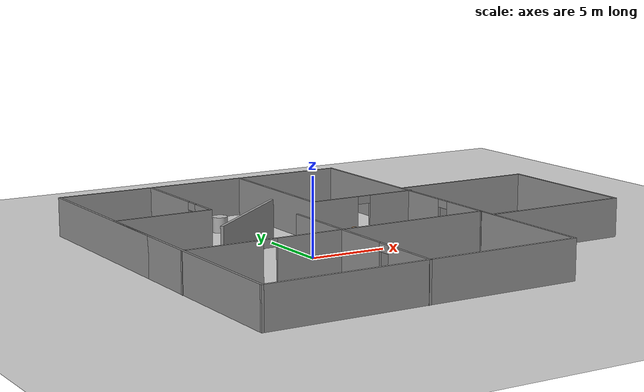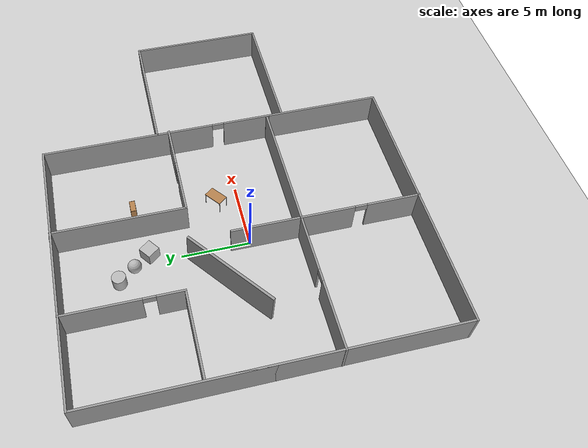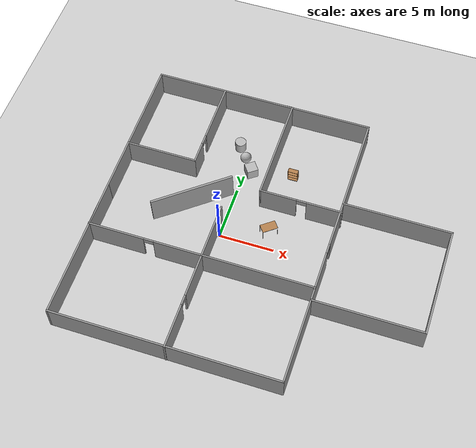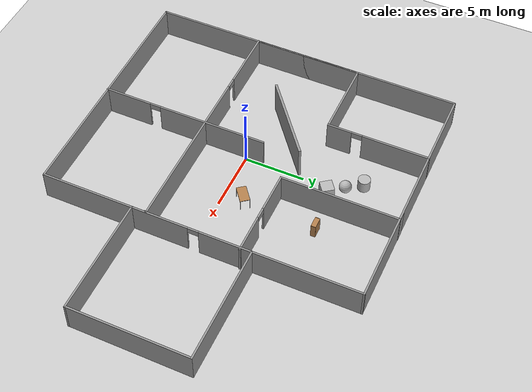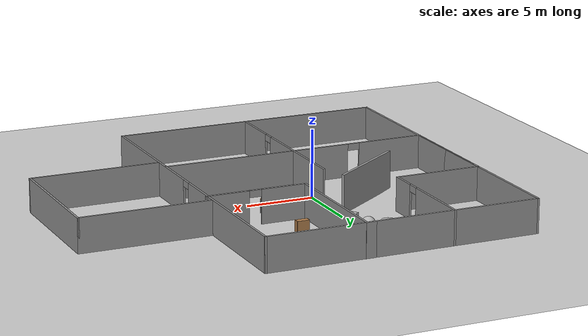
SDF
<sdf version="1.6">
 <world name="default">
  <model name="ground_plane">
   <static>1</static>
   <link name="link">
    <collision name="collision">
     <geometry><plane><normal>0 0 1</normal><size>100 100</size></plane></geometry>
     <surface><friction><ode><mu>100</mu><mu2>50</mu2></ode></friction></surface>
    </collision>
    <visual name="visual">
     <cast_shadows>0</cast_shadows>
     <geometry><plane><normal>0 0 1</normal><size>100 100</size></plane></geometry>
     <material>
      <script><uri>file://media/materials/scripts/gazebo.material</uri><name>Gazebo/Grey</name></script>
     </material>
    </visual>
   </link>
  </model>
  <model name="bookshelf">
   <static>1</static>
   <link name="link">
    <inertial><mass>1</mass></inertial>
    <collision name="back">
     <pose>0 0.005 0.6 0 -0 0</pose>
     <geometry><box><size>0.9 0.01 1.2</size></box></geometry>
    </collision>
    <visual name="visual1">
     <pose>0 0.005 0.6 0 -0 0</pose>
     <geometry><box><size>0.9 0.01 1.2</size></box></geometry>
     <material>
      <script><uri>file://media/materials/scripts/gazebo.material</uri><name>Gazebo/Wood</name></script>
     </material>
    </visual>
    <collision name="left_side">
     <pose>0.45 -0.195 0.6 0 -0 0</pose>
     <geometry><box><size>0.02 0.4 1.2</size></box></geometry>
    </collision>
    <visual name="visual2">
     <pose>0.45 -0.195 0.6 0 -0 0</pose>
     <geometry><box><size>0.02 0.4 1.2</size></box></geometry>
     <material>
      <script><uri>file://media/materials/scripts/gazebo.material</uri><name>Gazebo/Wood</name></script>
     </material>
    </visual>
    <collision name="right_side">
     <pose>-0.45 -0.195 0.6 0 -0 0</pose>
     <geometry><box><size>0.02 0.4 1.2</size></box></geometry>
    </collision>
    <visual name="visual3">
     <pose>-0.45 -0.195 0.6 0 -0 0</pose>
     <geometry><box><size>0.02 0.4 1.2</size></box></geometry>
     <material>
      <script><uri>file://media/materials/scripts/gazebo.material</uri><name>Gazebo/Wood</name></script>
     </material>
    </visual>
    <collision name="bottom">
     <pose>0 -0.195 0.03 0 -0 0</pose>
     <geometry><box><size>0.88 0.4 0.06</size></box></geometry>
    </collision>
    <visual name="visual4">
     <pose>0 -0.195 0.03 0 -0 0</pose>
     <geometry><box><size>0.88 0.4 0.06</size></box></geometry>
     <material>
      <script><uri>file://media/materials/scripts/gazebo.material</uri><name>Gazebo/Wood</name></script>
     </material>
    </visual>
    <collision name="top">
     <pose>0 -0.195 1.19 0 -0 0</pose>
     <geometry><box><size>0.88 0.4 0.02</size></box></geometry>
    </collision>
    <visual name="visual5">
     <pose>0 -0.195 1.19 0 -0 0</pose>
     <geometry><box><size>0.88 0.4 0.02</size></box></geometry>
     <material>
      <script><uri>file://media/materials/scripts/gazebo.material</uri><name>Gazebo/Wood</name></script>
     </material>
    </visual>
    <collision name="low_shelf">
     <pose>0 -0.195 0.43 0 -0 0</pose>
     <geometry><box><size>0.88 0.4 0.02</size></box></geometry>
    </collision>
    <visual name="visual6">
     <pose>0 -0.195 0.43 0 -0 0</pose>
     <geometry><box><size>0.88 0.4 0.02</size></box></geometry>
     <material>
      <script><uri>file://media/materials/scripts/gazebo.material</uri><name>Gazebo/Wood</name></script>
     </material>
    </visual>
    <collision name="high_shelf">
     <pose>0 -0.195 0.8 0 -0 0</pose>
     <geometry><box><size>0.88 0.4 0.02</size></box></geometry>
    </collision>
    <visual name="visual7">
     <pose>0 -0.195 0.8 0 -0 0</pose>
     <geometry><box><size>0.88 0.4 0.02</size></box></geometry>
     <material>
      <script><uri>file://media/materials/scripts/gazebo.material</uri><name>Gazebo/Wood</name></script>
     </material>
    </visual>
   </link>
   <pose>4.37362 8.00409 0 0 -0 0</pose>
  </model>
  <model name="textured_shapes">
   <pose>-0.307519 8.3938 0.5 0 -0 0.64384</pose>
   <link name="box">
    <pose>0 -1.5 0 0 -0 0</pose>
    <collision name="collision"><geometry><box><size>1 1 1</size></box></geometry></collision>
    <visual name="visual">
     <geometry><box><size>1 1 1</size></box></geometry>
     <material>
      <script>
       <uri>model://textured_shapes/materials/scripts</uri>
       <uri>model://textured_shapes/materials/textures</uri>
       <name>TexturedShape/Squares</name>
      </script>
     </material>
    </visual>
    <inertial>
     <inertia><ixx>1</ixx><ixy>0</ixy><ixz>0</ixz><iyy>1</iyy><iyz>0</iyz><izz>1</izz></inertia>
     <mass>1</mass>
    </inertial>
   </link>
   <link name="sphere">
    <collision name="collision"><geometry><sphere><radius>0.5</radius></sphere></geometry></collision>
    <visual name="visual">
     <geometry><sphere><radius>0.5</radius></sphere></geometry>
     <material>
      <script>
       <uri>model://textured_shapes/materials/scripts</uri>
       <uri>model://textured_shapes/materials/textures</uri>
       <name>TexturedShape/Squares</name>
      </script>
     </material>
    </visual>
    <inertial>
     <inertia><ixx>1</ixx><ixy>0</ixy><ixz>0</ixz><iyy>1</iyy><iyz>0</iyz><izz>1</izz></inertia>
     <mass>1</mass>
    </inertial>
   </link>
   <link name="cylinder">
    <pose>0 1.5 0 0 -0 0</pose>
    <collision name="collision">
     <geometry><cylinder><radius>0.5</radius><length>1</length></cylinder></geometry>
    </collision>
    <visual name="visual">
     <geometry><cylinder><radius>0.5</radius><length>1</length></cylinder></geometry>
     <material>
      <script>
       <uri>model://textured_shapes/materials/scripts</uri>
       <uri>model://textured_shapes/materials/textures</uri>
       <name>TexturedShape/Squares</name>
      </script>
     </material>
    </visual>
    <inertial>
     <inertia><ixx>1</ixx><ixy>0</ixy><ixz>0</ixz><iyy>1</iyy><iyz>0</iyz><izz>1</izz></inertia>
     <mass>1</mass>
    </inertial>
   </link>
  </model>
  <model name="grey_wall">
   <static>1</static>
   <link name="link">
    <pose>0 0 1.4 0 -0 0</pose>
    <collision name="collision"><geometry><box><size>7.5 0.2 2.8</size></box></geometry></collision>
    <visual name="visual">
     <cast_shadows>0</cast_shadows>
     <geometry><box><size>7.5 0.2 2.8</size></box></geometry>
     <material>
      <script>
       <uri>model://grey_wall/materials/scripts</uri>
       <uri>model://grey_wall/materials/textures</uri>
       <name>vrc/grey_wall</name>
      </script>
     </material>
    </visual>
   </link>
   <pose>-3.18514 2.23987 4e-06 0.01417 -0.022146 0.663578</pose>
  </model>
  <model name="table_2">
   <static>0</static>
   <link name="link">
    <collision name="surface">
     <pose>0 0 1 0 -0 0</pose>
     <geometry><box><size>1.5 0.8 0.03</size></box></geometry>
     <surface><friction><ode><mu>0.6</mu><mu2>0.6</mu2></ode></friction></surface>
    </collision>
    <visual name="visual1">
     <pose>0 0 1 0 -0 0</pose>
     <geometry><box><size>1.4 0.8 0.04</size></box></geometry>
     <material>
      <script><uri>file://media/materials/scripts/gazebo.material</uri><name>Gazebo/Wood</name></script>
     </material>
    </visual>
    <collision name="front_left_leg">
     <pose>0.68 0.38 0.5 0 -0 0</pose>
     <geometry><cylinder><radius>0.02</radius><length>1</length></cylinder></geometry>
    </collision>
    <visual name="front_left_leg">
     <pose>0.68 0.38 0.5 0 -0 0</pose>
     <geometry><cylinder><radius>0.02</radius><length>1</length></cylinder></geometry>
     <material>
      <script><uri>file://media/materials/scripts/gazebo.material</uri><name>Gazebo/Grey</name></script>
     </material>
    </visual>
    <collision name="front_right_leg">
     <pose>0.68 -0.38 0.5 0 -0 0</pose>
     <geometry><cylinder><radius>0.02</radius><length>1</length></cylinder></geometry>
    </collision>
    <visual name="front_right_leg">
     <pose>0.68 -0.38 0.5 0 -0 0</pose>
     <geometry><cylinder><radius>0.02</radius><length>1</length></cylinder></geometry>
     <material>
      <script><uri>file://media/materials/scripts/gazebo.material</uri><name>Gazebo/Grey</name></script>
     </material>
    </visual>
    <collision name="back_right_leg">
     <pose>-0.68 -0.38 0.5 0 -0 0</pose>
     <geometry><cylinder><radius>0.02</radius><length>1</length></cylinder></geometry>
    </collision>
    <visual name="back_right_leg">
     <pose>-0.68 -0.38 0.5 0 -0 0</pose>
     <geometry><cylinder><radius>0.02</radius><length>1</length></cylinder></geometry>
     <material>
      <script><uri>file://media/materials/scripts/gazebo.material</uri><name>Gazebo/Grey</name></script>
     </material>
    </visual>
    <collision name="back_left_leg">
     <pose>-0.68 0.38 0.5 0 -0 0</pose>
     <geometry><cylinder><radius>0.02</radius><length>1</length></cylinder></geometry>
    </collision>
    <visual name="back_left_leg">
     <pose>-0.68 0.38 0.5 0 -0 0</pose>
     <geometry><cylinder><radius>0.02</radius><length>1</length></cylinder></geometry>
     <material>
      <script><uri>file://media/materials/scripts/gazebo.material</uri><name>Gazebo/Grey</name></script>
     </material>
    </visual>
    <inertial>
     <inertia><ixx>1</ixx><ixy>0</ixy><ixz>0</ixz><iyy>1</iyy><iyz>0</iyz><izz>1</izz></inertia>
     <mass>1</mass>
    </inertial>
   </link>
   <pose>4.02933 1.6454 0 0 -0 0.661845</pose>
  </model>
  <model name="White_walls_and_doors">
   <pose>4.437 0.617821 0 0 -0 0</pose>
   <link name="Wall_18">
    <collision name="Wall_18_Collision">
     <geometry><box><size>20.25 0.15 2.5</size></box></geometry>
     <pose>0 0 1.25 0 -0 0</pose>
    </collision>
    <visual name="Wall_18_Visual">
     <pose>0 0 1.25 0 -0 0</pose>
     <geometry><box><size>20.25 0.15 2.5</size></box></geometry>
     <material>
      <script><uri>file://media/materials/scripts/gazebo.material</uri><name>Gazebo/Grey</name></script>
      <ambient>1 1 1 1</ambient>
     </material>
    </visual>
    <pose>-4.80227 -13.0434 0 0 -0 3.14159</pose>
   </link>
   <link name="Wall_19">
    <collision name="Wall_19_Collision">
     <geometry><box><size>26.25 0.15 2.5</size></box></geometry>
     <pose>0 0 1.25 0 -0 0</pose>
    </collision>
    <visual name="Wall_19_Visual">
     <pose>0 0 1.25 0 -0 0</pose>
     <geometry><box><size>26.25 0.15 2.5</size></box></geometry>
     <material>
      <script><uri>file://media/materials/scripts/gazebo.material</uri><name>Gazebo/Grey</name></script>
      <ambient>1 1 1 1</ambient>
     </material>
    </visual>
    <pose>-14.8523 0.006615 0 0 -0 1.5708</pose>
   </link>
   <link name="Wall_20">
    <collision name="Wall_20_Collision">
     <geometry><box><size>6.5 0.15 2.5</size></box></geometry>
     <pose>0 0 1.25 0 -0 0</pose>
    </collision>
    <visual name="Wall_20_Visual">
     <pose>0 0 1.25 0 -0 0</pose>
     <geometry><box><size>6.5 0.15 2.5</size></box></geometry>
     <material>
      <script><uri>file://media/materials/scripts/gazebo.material</uri><name>Gazebo/Grey</name></script>
      <ambient>1 1 1 1</ambient>
     </material>
    </visual>
    <pose>-11.6773 13.0566 0 0 -0 0</pose>
   </link>
   <link name="Wall_21">
    <pose>-8.50227 8.88162 0 0 0 -1.5708</pose>
    <visual name="Wall_21_Visual_0">
     <pose>-1.47112 0 1.25 0 -0 0</pose>
     <geometry><box><size>5.55776 0.15 2.5</size></box></geometry>
     <material>
      <script><uri>file://media/materials/scripts/gazebo.material</uri><name>Gazebo/Grey</name></script>
      <ambient>1 1 1 1</ambient>
     </material>
    </visual>
    <collision name="Wall_21_Collision_0">
     <geometry><box><size>5.55776 0.15 2.5</size></box></geometry>
     <pose>-1.47112 0 1.25 0 -0 0</pose>
    </collision>
    <visual name="Wall_21_Visual_1">
     <pose>3.22888 0 1.25 0 -0 0</pose>
     <geometry><box><size>2.04224 0.15 2.5</size></box></geometry>
     <material>
      <script><uri>file://media/materials/scripts/gazebo.material</uri><name>Gazebo/Grey</name></script>
      <ambient>1 1 1 1</ambient>
     </material>
    </visual>
    <collision name="Wall_21_Collision_1">
     <geometry><box><size>2.04224 0.15 2.5</size></box></geometry>
     <pose>3.22888 0 1.25 0 -0 0</pose>
    </collision>
    <visual name="Wall_21_Visual_2">
     <pose>1.75776 0 2.25 0 -0 0</pose>
     <geometry><box><size>0.9 0.15 0.5</size></box></geometry>
     <material>
      <script><uri>file://media/materials/scripts/gazebo.material</uri><name>Gazebo/Grey</name></script>
      <ambient>1 1 1 1</ambient>
     </material>
    </visual>
    <collision name="Wall_21_Collision_2">
     <geometry><box><size>0.9 0.15 0.5</size></box></geometry>
     <pose>1.75776 0 2.25 0 -0 0</pose>
    </collision>
   </link>
   <link name="Wall_22">
    <collision name="Wall_22_Collision">
     <geometry><box><size>6.5 0.15 2.5</size></box></geometry>
     <pose>0 0 1.25 0 -0 0</pose>
    </collision>
    <visual name="Wall_22_Visual">
     <pose>0 0 1.25 0 -0 0</pose>
     <geometry><box><size>6.5 0.15 2.5</size></box></geometry>
     <material>
      <script><uri>file://media/materials/scripts/gazebo.material</uri><name>Gazebo/Grey</name></script>
      <ambient>1 1 1 1</ambient>
     </material>
    </visual>
    <pose>-11.6773 4.70662 0 0 -0 3.14159</pose>
   </link>
   <link name="Wall_23">
    <collision name="Wall_23_Collision">
     <geometry><box><size>9 0.15 2.5</size></box></geometry>
     <pose>0 0 1.25 0 -0 0</pose>
    </collision>
    <visual name="Wall_23_Visual">
     <pose>0 0 1.25 0 -0 0</pose>
     <geometry><box><size>9 0.15 2.5</size></box></geometry>
     <material>
      <script><uri>file://media/materials/scripts/gazebo.material</uri><name>Gazebo/Grey</name></script>
      <ambient>1 1 1 1</ambient>
     </material>
    </visual>
    <pose>-14.8523 0.281615 0 0 0 -1.5708</pose>
   </link>
   <link name="Wall_31">
    <pose>5.24773 0.006615 0 0 -0 1.5708</pose>
    <visual name="Wall_31_Visual_0">
     <pose>-6.97193 0 1.25 0 -0 0</pose>
     <geometry><box><size>12.3061 0.15 2.5</size></box></geometry>
     <material>
      <script><uri>file://media/materials/scripts/gazebo.material</uri><name>Gazebo/Grey</name></script>
      <ambient>1 1 1 1</ambient>
     </material>
    </visual>
    <collision name="Wall_31_Collision_0">
     <geometry><box><size>12.3061 0.15 2.5</size></box></geometry>
     <pose>-6.97193 0 1.25 0 -0 0</pose>
    </collision>
    <visual name="Wall_31_Visual_1">
     <pose>6.60307 0 1.25 0 -0 0</pose>
     <geometry><box><size>13.0439 0.15 2.5</size></box></geometry>
     <material>
      <script><uri>file://media/materials/scripts/gazebo.material</uri><name>Gazebo/Grey</name></script>
      <ambient>1 1 1 1</ambient>
     </material>
    </visual>
    <collision name="Wall_31_Collision_1">
     <geometry><box><size>13.0439 0.15 2.5</size></box></geometry>
     <pose>6.60307 0 1.25 0 -0 0</pose>
    </collision>
    <visual name="Wall_31_Visual_2">
     <pose>-0.368859 0 2.25 0 -0 0</pose>
     <geometry><box><size>0.9 0.15 0.5</size></box></geometry>
     <material>
      <script><uri>file://media/materials/scripts/gazebo.material</uri><name>Gazebo/Grey</name></script>
      <ambient>1 1 1 1</ambient>
     </material>
    </visual>
    <collision name="Wall_31_Collision_2">
     <geometry><box><size>0.9 0.15 0.5</size></box></geometry>
     <pose>-0.368859 0 2.25 0 -0 0</pose>
    </collision>
   </link>
   <link name="Wall_33">
    <collision name="Wall_33_Collision">
     <geometry><box><size>13.9 0.15 2.5</size></box></geometry>
     <pose>0 0 1.25 0 -0 0</pose>
    </collision>
    <visual name="Wall_33_Visual">
     <pose>0 0 1.25 0 -0 0</pose>
     <geometry><box><size>13.9 0.15 2.5</size></box></geometry>
     <material>
      <script><uri>file://media/materials/scripts/gazebo.material</uri><name>Gazebo/Grey</name></script>
      <ambient>1 1 1 1</ambient>
     </material>
    </visual>
    <pose>-1.62727 13.0566 0 0 -0 0</pose>
   </link>
   <link name="Wall_35">
    <collision name="Wall_35_Collision">
     <geometry><box><size>0.75 0.15 2.5</size></box></geometry>
     <pose>0 0 1.25 0 -0 0</pose>
    </collision>
    <visual name="Wall_35_Visual">
     <pose>0 0 1.25 0 -0 0</pose>
     <geometry><box><size>0.75 0.15 2.5</size></box></geometry>
     <material>
      <script><uri>file://media/materials/scripts/gazebo.material</uri><name>Gazebo/Grey</name></script>
      <ambient>1 1 1 1</ambient>
     </material>
    </visual>
    <pose>-2.2932 13.0776 0 0 -0 0</pose>
   </link>
   <link name="Wall_36">
    <collision name="Wall_36_Collision">
     <geometry><box><size>9.75 0.15 2.5</size></box></geometry>
     <pose>0 0 1.25 0 -0 0</pose>
    </collision>
    <visual name="Wall_36_Visual">
     <pose>0 0 1.25 0 -0 0</pose>
     <geometry><box><size>9.75 0.15 2.5</size></box></geometry>
     <material>
      <script><uri>file://media/materials/scripts/gazebo.material</uri><name>Gazebo/Grey</name></script>
      <ambient>1 1 1 1</ambient>
     </material>
    </visual>
    <pose>-1.9932 8.27759 0 0 0 -1.5708</pose>
   </link>
   <link name="Wall_37">
    <pose>1.6818 3.47759 0 0 -0 0</pose>
    <visual name="Wall_37_Visual_0">
     <pose>-2.06159 0 1.25 0 -0 0</pose>
     <geometry><box><size>3.37682 0.15 2.5</size></box></geometry>
     <material>
      <script><uri>file://media/materials/scripts/gazebo.material</uri><name>Gazebo/Grey</name></script>
      <ambient>1 1 1 1</ambient>
     </material>
    </visual>
    <collision name="Wall_37_Collision_0">
     <geometry><box><size>3.37682 0.15 2.5</size></box></geometry>
     <pose>-2.06159 0 1.25 0 -0 0</pose>
    </collision>
    <visual name="Wall_37_Visual_1">
     <pose>2.13841 0 1.25 0 -0 0</pose>
     <geometry><box><size>3.22318 0.15 2.5</size></box></geometry>
     <material>
      <script><uri>file://media/materials/scripts/gazebo.material</uri><name>Gazebo/Grey</name></script>
      <ambient>1 1 1 1</ambient>
     </material>
    </visual>
    <collision name="Wall_37_Collision_1">
     <geometry><box><size>3.22318 0.15 2.5</size></box></geometry>
     <pose>2.13841 0 1.25 0 -0 0</pose>
    </collision>
    <visual name="Wall_37_Visual_2">
     <pose>0.076818 0 2.25 0 -0 0</pose>
     <geometry><box><size>0.9 0.15 0.5</size></box></geometry>
     <material>
      <script><uri>file://media/materials/scripts/gazebo.material</uri><name>Gazebo/Grey</name></script>
      <ambient>1 1 1 1</ambient>
     </material>
    </visual>
    <collision name="Wall_37_Collision_2">
     <geometry><box><size>0.9 0.15 0.5</size></box></geometry>
     <pose>0.076818 0 2.25 0 -0 0</pose>
    </collision>
   </link>
   <link name="Wall_39">
    <collision name="Wall_39_Collision">
     <geometry><box><size>9.75 0.15 2.5</size></box></geometry>
     <pose>0 0 1.25 0 -0 0</pose>
    </collision>
    <visual name="Wall_39_Visual">
     <pose>0 0 1.25 0 -0 0</pose>
     <geometry><box><size>9.75 0.15 2.5</size></box></geometry>
     <material>
      <script><uri>file://media/materials/scripts/gazebo.material</uri><name>Gazebo/Grey</name></script>
      <ambient>1 1 1 1</ambient>
     </material>
    </visual>
    <pose>10.0814 4.38553 0 0 -0 0</pose>
   </link>
   <link name="Wall_40">
    <collision name="Wall_40_Collision">
     <geometry><box><size>10 0.15 2.5</size></box></geometry>
     <pose>0 0 1.25 0 -0 0</pose>
    </collision>
    <visual name="Wall_40_Visual">
     <pose>0 0 1.25 0 -0 0</pose>
     <geometry><box><size>10 0.15 2.5</size></box></geometry>
     <material>
      <script><uri>file://media/materials/scripts/gazebo.material</uri><name>Gazebo/Grey</name></script>
      <ambient>1 1 1 1</ambient>
     </material>
    </visual>
    <pose>14.8814 -0.539473 0 0 0 -1.5708</pose>
   </link>
   <link name="Wall_41">
    <collision name="Wall_41_Collision">
     <geometry><box><size>9.75 0.15 2.5</size></box></geometry>
     <pose>0 0 1.25 0 -0 0</pose>
    </collision>
    <visual name="Wall_41_Visual">
     <pose>0 0 1.25 0 -0 0</pose>
     <geometry><box><size>9.75 0.15 2.5</size></box></geometry>
     <material>
      <script><uri>file://media/materials/scripts/gazebo.material</uri><name>Gazebo/Grey</name></script>
      <ambient>1 1 1 1</ambient>
     </material>
    </visual>
    <pose>10.0814 -5.46447 0 0 -0 3.14159</pose>
   </link>
   <link name="Wall_43">
    <collision name="Wall_43_Collision">
     <geometry><box><size>0.25 0.15 2.5</size></box></geometry>
     <pose>0 0 1.25 0 -0 0</pose>
    </collision>
    <visual name="Wall_43_Visual">
     <pose>0 0 1.25 0 -0 0</pose>
     <geometry><box><size>0.25 0.15 2.5</size></box></geometry>
     <material>
      <script><uri>file://media/materials/scripts/gazebo.material</uri><name>Gazebo/Grey</name></script>
      <ambient>1 1 1 1</ambient>
     </material>
    </visual>
    <pose>5.21856 -4.31567 0 0 -0 1.5708</pose>
   </link>
   <link name="Wall_44">
    <pose>-4.83144 -4.26567 0 0 -0 3.14159</pose>
    <visual name="Wall_44_Visual_0">
     <pose>-2.9883 0 1.25 0 -0 0</pose>
     <geometry><box><size>14.2734 0.15 2.5</size></box></geometry>
     <material>
      <script><uri>file://media/materials/scripts/gazebo.material</uri><name>Gazebo/Grey</name></script>
      <ambient>1 1 1 1</ambient>
     </material>
    </visual>
    <collision name="Wall_44_Collision_0">
     <geometry><box><size>14.2734 0.15 2.5</size></box></geometry>
     <pose>-2.9883 0 1.25 0 -0 0</pose>
    </collision>
    <visual name="Wall_44_Visual_1">
     <pose>7.5867 0 1.25 0 -0 0</pose>
     <geometry><box><size>5.07659 0.15 2.5</size></box></geometry>
     <material>
      <script><uri>file://media/materials/scripts/gazebo.material</uri><name>Gazebo/Grey</name></script>
      <ambient>1 1 1 1</ambient>
     </material>
    </visual>
    <collision name="Wall_44_Collision_1">
     <geometry><box><size>5.07659 0.15 2.5</size></box></geometry>
     <pose>7.5867 0 1.25 0 -0 0</pose>
    </collision>
    <visual name="Wall_44_Visual_2">
     <pose>4.59841 0 2.25 0 -0 0</pose>
     <geometry><box><size>0.9 0.15 0.5</size></box></geometry>
     <material>
      <script><uri>file://media/materials/scripts/gazebo.material</uri><name>Gazebo/Grey</name></script>
      <ambient>1 1 1 1</ambient>
     </material>
    </visual>
    <collision name="Wall_44_Collision_2">
     <geometry><box><size>0.9 0.15 0.5</size></box></geometry>
     <pose>4.59841 0 2.25 0 -0 0</pose>
    </collision>
   </link>
   <link name="Wall_47">
    <pose>-4.66563 -6.15259 0 0 -0 1.5708</pose>
    <visual name="Wall_47_Visual_0">
     <pose>-5.00007 0 1.25 0 -0 0</pose>
     <geometry><box><size>3.99986 0.15 2.5</size></box></geometry>
     <material>
      <script><uri>file://media/materials/scripts/gazebo.material</uri><name>Gazebo/Grey</name></script>
      <ambient>1 1 1 1</ambient>
     </material>
    </visual>
    <collision name="Wall_47_Collision_0">
     <geometry><box><size>3.99986 0.15 2.5</size></box></geometry>
     <pose>-5.00007 0 1.25 0 -0 0</pose>
    </collision>
    <visual name="Wall_47_Visual_1">
     <pose>2.44993 0 1.25 0 -0 0</pose>
     <geometry><box><size>9.10014 0.15 2.5</size></box></geometry>
     <material>
      <script><uri>file://media/materials/scripts/gazebo.material</uri><name>Gazebo/Grey</name></script>
      <ambient>1 1 1 1</ambient>
     </material>
    </visual>
    <collision name="Wall_47_Collision_1">
     <geometry><box><size>9.10014 0.15 2.5</size></box></geometry>
     <pose>2.44993 0 1.25 0 -0 0</pose>
    </collision>
    <visual name="Wall_47_Visual_2">
     <pose>-2.55014 0 2.25 0 -0 0</pose>
     <geometry><box><size>0.9 0.15 0.5</size></box></geometry>
     <material>
      <script><uri>file://media/materials/scripts/gazebo.material</uri><name>Gazebo/Grey</name></script>
      <ambient>1 1 1 1</ambient>
     </material>
    </visual>
    <collision name="Wall_47_Collision_2">
     <geometry><box><size>0.9 0.15 0.5</size></box></geometry>
     <pose>-2.55014 0 2.25 0 -0 0</pose>
    </collision>
   </link>
   <static>1</static>
  </model>
 </world>
</sdf>
